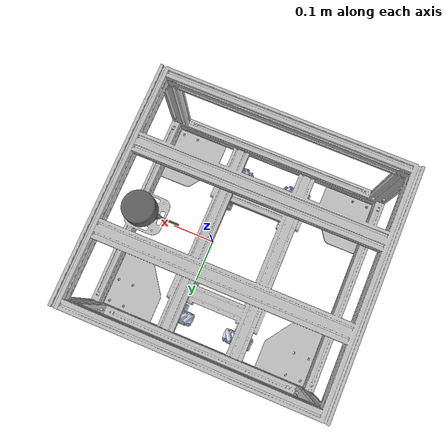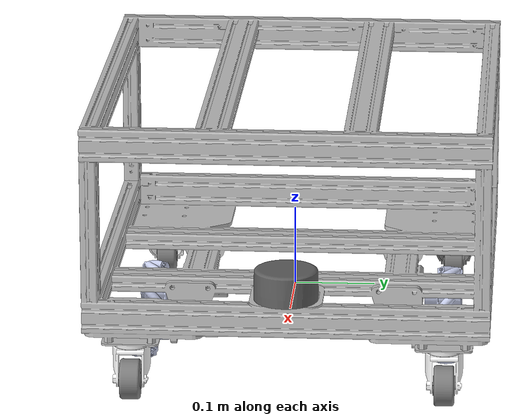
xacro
<?xml version="1.0" encoding="utf-8"?>
<robot name="chassis" xmlns:xacro="http://www.ros.org/wiki/xacro">

  <!-- ========== 参数配置 ========== -->
  <xacro:arg name="wheel_mu1" default="0.8"/>
  <xacro:arg name="wheel_mu2" default="0.6"/>
  <xacro:arg name="wheel_kp" default="100000.0"/>
  <xacro:arg name="wheel_kd" default="10.0"/>

  <xacro:arg name="caster_mu1" default="0.15"/>
  <xacro:arg name="caster_mu2" default="0.05"/>
  <xacro:arg name="caster_kp" default="8000.0"/>
  <xacro:arg name="caster_kd" default="1.0"/>

  <xacro:arg name="caster_damping" default="0.2"/>
  <xacro:arg name="caster_friction" default="0.05"/>

  <xacro:arg name="use_sim" default="true"/>

  <xacro:include filename="$(find chassis)/urdf/scan_sensor.xacro" />
  <xacro:include filename="$(find chassis)/urdf/mecanum.xacro" />

  <xacro:mecanum_drive
      use_sim="$(arg use_sim)"
      config_path="$(find chassis)/config/robot_config.yaml"
      wheel_mu1="$(arg wheel_mu1)"
      wheel_mu2="$(arg wheel_mu2)"
      wheel_kp="$(arg wheel_kp)"
      wheel_kd="$(arg wheel_kd)"
      caster_mu1="$(arg caster_mu1)"
      caster_mu2="$(arg caster_mu2)"
      caster_kp="$(arg caster_kp)"
      caster_kd="$(arg caster_kd)"
      caster_damping="$(arg caster_damping)"
      caster_friction="$(arg caster_friction)"
  />

  <xacro:scan_sensor prefix="scan" use_sim="$(arg use_sim)"/>

  <!-- ========== base ========== -->
  <link name="base_link">
    <inertial>
      <origin xyz="-0.0675270768601142 1.58783596061474E-05 0.0798674130827827" rpy="0 0 0" />
      <mass value="2.96722438134946" />
      <inertia
        ixx="0.018714594246172"
        ixy="-1.04874464350767E-06"
        ixz="-3.69448032218879E-08"
        iyy="0.0204034609796942"
        iyz="3.19038736280592E-11"
        izz="0.0374420224980581" />
    </inertial>
    <visual>
      <origin xyz="0 0 0" rpy="0 0 0" />
      <geometry>
        <mesh filename="package://chassis/meshes/base_link.STL" />
      </geometry>
      <material name="">
        <color rgba="0.752941176470588 0.752941176470588 0.752941176470588 1" />
      </material>
    </visual>
    <collision>
      <origin xyz="0 0 0" rpy="0 0 0" />
      <geometry>
        <mesh filename="package://chassis/meshes/base_link.STL" />
      </geometry>
    </collision>
  </link>

  <!-- ========== 麦轮 ========== -->
  <link name="FL_Link">
    <inertial>
      <origin xyz="-4.8532404021695E-06 -0.0177688188653586 3.72944025633232E-05" rpy="0 0 0" />
      <mass value="0.057099187693903" />
      <inertia
        ixx="2.10306170372987E-05"
        ixy="-1.11304021950106E-08"
        ixz="-8.1440403185043E-09"
        iyy="3.39619724351019E-05"
        iyz="8.9355546624424E-09"
        izz="2.10416881894403E-05" />
    </inertial>
    <visual>
      <origin xyz="0 0 0" rpy="0 0 0" />
      <geometry>
        <mesh filename="package://chassis/meshes/FL_Link.STL" />
      </geometry>
      <material name="">
        <color rgba="0.792156862745098 0.819607843137255 0.933333333333333 1" />
      </material>
    </visual>
    <collision>
      <origin xyz="0 0 0" rpy="0 0 0" />
      <geometry>
        <mesh filename="package://chassis/meshes/FL_Link.STL" />
      </geometry>
    </collision>
  </link>

  <joint name="FL_Joint" type="continuous">
    <origin xyz="0.0118643454815511 0.207006913787674 -0.0618699704261833" rpy="0 0 0" />
    <parent link="base_link" />
    <child link="FL_Link" />
    <axis xyz="0.000579809806714553 -0.99999983191028 0" />
  </joint>

  <link name="FR_Link">
    <inertial>
      <origin xyz="2.70131134820217E-05 0.017765652406799 -1.51714753059001E-05" rpy="0 0 0" />
      <mass value="0.0570982559608341" />
      <inertia
        ixx="2.10412452587063E-05"
        ixy="-1.6432899591046E-08"
        ixz="-8.14467783929371E-09"
        iyy="3.39612412912164E-05"
        iyz="3.63299828113721E-09"
        izz="2.10301739693171E-05" />
    </inertial>
    <visual>
      <origin xyz="0 0 0" rpy="0 0 0" />
      <geometry>
        <mesh filename="package://chassis/meshes/FR_Link.STL" />
      </geometry>
      <material name="">
        <color rgba="0.792156862745098 0.819607843137255 0.933333333333333 1" />
      </material>
    </visual>
    <collision>
      <origin xyz="0 0 0" rpy="0 0 0" />
      <geometry>
        <mesh filename="package://chassis/meshes/FR_Link.STL" />
      </geometry>
    </collision>
  </link>

  <joint name="FR_Joint" type="continuous">
    <origin xyz="0.0121038069317233 -0.205993016791277 -0.0618699699460414" rpy="0 0 0" />
    <parent link="base_link" />
    <child link="FR_Link" />
    <axis xyz="-0.000579809806714554 0.99999983191028 0" />
  </joint>

  <link name="BL_Link">
    <inertial>
      <origin xyz="4.76145018993152E-05 -0.0177656091305489 1.51715021141641E-05" rpy="0 0 0" />
      <mass value="0.0570982559458567" />
      <inertia
        ixx="2.10412245126417E-05"
        ixy="1.45057897625793E-09"
        ixz="8.14046530341467E-09"
        iyy="3.39612620190898E-05"
        iyz="3.6424171419057E-09"
        izz="2.10301739658219E-05" />
    </inertial>
    <visual>
      <origin xyz="0 0 0" rpy="0 0 0" />
      <geometry>
        <mesh filename="package://chassis/meshes/BL_Link.STL" />
      </geometry>
      <material name="">
        <color rgba="0.792156862745098 0.819607843137255 0.933333333333333 1" />
      </material>
    </visual>
    <collision>
      <origin xyz="0 0 0" rpy="0 0 0" />
      <geometry>
        <mesh filename="package://chassis/meshes/BL_Link.STL" />
      </geometry>
    </collision>
  </link>

  <joint name="BL_Joint" type="continuous">
    <origin xyz="-0.143135048654426 0.205917043435722 -0.0618702812116643" rpy="0 0 0" />
    <parent link="base_link" />
    <child link="BL_Link" />
    <axis xyz="0.000579809806715559 -0.99999983191028 0" />
  </joint>

  <link name="BR_Link">
    <inertial>
      <origin xyz="4.85324040201685E-06 0.0177688188654452 3.7294361248115E-05" rpy="0 0 0" />
      <mass value="0.0570991876939034" />
      <inertia
        ixx="2.10306170372988E-05"
        ixy="-1.11304021758348E-08"
        ixz="8.14404034436538E-09"
        iyy="3.39619724350603E-05"
        iyz="-8.93558470427248E-09"
        izz="2.10416881894818E-05" />
    </inertial>
    <visual>
      <origin xyz="0 0 0" rpy="0 0 0" />
      <geometry>
        <mesh filename="package://chassis/meshes/BR_Link.STL" />
      </geometry>
      <material name="">
        <color rgba="0.792156862745098 0.819607843137255 0.933333333333333 1" />
      </material>
    </visual>
    <collision>
      <origin xyz="0 0 0" rpy="0 0 0" />
      <geometry>
        <mesh filename="package://chassis/meshes/BR_Link.STL" />
      </geometry>
    </collision>
  </link>

  <joint name="BR_Joint" type="continuous">
    <origin xyz="-0.142895587204251 -0.207082887143228 -0.0618702807315214" rpy="0 0 0" />
    <parent link="base_link" />
    <child link="BR_Link" />
    <axis xyz="-0.000579809806717571 0.99999983191028 0" />
  </joint>

  <!-- ========== 从动轮：支架固定，小滚轮连续 ========== -->

  <link name="caster_FL_Link">
    <inertial>
      <origin xyz="0.0117884879284703 0.000222614197135318 -0.0122637089489482" rpy="0 0 0" />
      <mass value="0.0145709016852163" />
      <inertia
        ixx="5.41948990782556E-06"
        ixy="1.14634945215277E-08"
        ixz="1.28769588367008E-06"
        iyy="5.04807353874172E-06"
        iyz="3.96860195506273E-08"
        izz="6.51291797995408E-06" />
    </inertial>
    <visual>
      <origin xyz="0 0 0" rpy="0 0 0" />
      <geometry>
        <mesh filename="package://chassis/meshes/caster_FL_Link.STL" />
      </geometry>
      <material name="">
        <color rgba="1 1 1 1" />
      </material>
    </visual>
  </link>

  <joint name="caster_FL_Joint" type="fixed">
    <origin xyz="0.15188785333492 0.193588098565258 -0.0359496954534681" rpy="0 0 0" />
    <parent link="base_link" />
    <child link="caster_FL_Link" />
    <axis xyz="0 0 -0.99999999999799" />
  </joint>

  <link name="caster-FL-wheel-Link">
    <inertial>
      <origin xyz="0.000292643953135885 -0.00949549153633783 5.86773171717958E-10" rpy="0 0 0" />
      <mass value="0.0496058590410657" />
      <inertia
        ixx="1.02033252308362E-05"
        ixy="-1.49916123996596E-07"
        ixz="9.26405810966813E-15"
        iyy="1.50630708965755E-05"
        iyz="-3.00593187238998E-13"
        izz="1.01987049279275E-05" />
    </inertial>
    <visual>
      <origin xyz="0 0 0" rpy="0 0 0" />
      <geometry>
        <mesh filename="package://chassis/meshes/caster-FL-wheel-Link.STL" />
      </geometry>
      <material name="">
        <color rgba="0.498039215686275 0.498039215686275 0.498039215686275 1" />
      </material>
    </visual>
    <collision>
      <origin xyz="0 0 0" rpy="1.5708 0 0" />
      <geometry>
        <cylinder radius="0.012" length="0.01" />
      </geometry>
    </collision>
  </link>

  <joint name="caster-FL-wheel-Joint" type="continuous">
    <origin xyz="0.0266946086859995 0.0103272164557828 -0.0329999464753622" rpy="0 0 0" />
    <parent link="caster_FL_Link" />
    <child link="caster-FL-wheel-Link" />
    <axis xyz="0.0308046266460062 -0.999525424877825 0" />
    <dynamics damping="0.05" friction="0.0" />
  </joint>

  <link name="caster_LR_Link">
    <inertial>
      <origin xyz="0.0117884879284716 0.000222614197133666 -0.0122637089489481" rpy="0 0 0" />
      <mass value="0.0145709016852163" />
      <inertia
        ixx="5.41948990782553E-06"
        ixy="1.14634945215314E-08"
        ixz="1.28769588367007E-06"
        iyy="5.04807353874169E-06"
        iyz="3.96860195505983E-08"
        izz="6.51291797995403E-06" />
    </inertial>
    <visual>
      <origin xyz="0 0 0" rpy="0 0 0" />
      <geometry>
        <mesh filename="package://chassis/meshes/caster_LR_Link.STL" />
      </geometry>
      <material name="">
        <color rgba="1 1 1 1" />
      </material>
    </visual>
  </link>

  <joint name="caster_FR_Joint" type="fixed">
    <origin xyz="0.152112239730119 -0.193411836384017 -0.0359496950035531" rpy="0 0 0" />
    <parent link="base_link" />
    <child link="caster_LR_Link" />
    <axis xyz="0 0 -0.99999999999799" />
  </joint>

  <link name="caster-FR-wheel-Link">
    <inertial>
      <origin xyz="-0.000292643953136995 0.00949549153633933 -5.86773303556942E-10" rpy="0 0 0" />
      <mass value="0.0496058590410657" />
      <inertia
        ixx="1.02033252308362E-05"
        ixy="-1.49916123996583E-07"
        ixz="9.26405765617566E-15"
        iyy="1.50630708965755E-05"
        iyz="-3.00593190220109E-13"
        izz="1.01987049279275E-05" />
    </inertial>
    <visual>
      <origin xyz="0 0 0" rpy="0 0 0" />
      <geometry>
        <mesh filename="package://chassis/meshes/caster-FR-wheel-Link.STL" />
      </geometry>
      <material name="">
        <color rgba="0.498039215686275 0.498039215686275 0.498039215686275 1" />
      </material>
    </visual>
    <collision>
      <origin xyz="0 0 0" rpy="1.5708 0 0" />
      <geometry>
        <cylinder radius="0.012" length="0.01" />
      </geometry>
    </collision>
  </link>

  <joint name="caster-FR-wheel-Joint" type="continuous">
    <origin xyz="0.0272798965922736 -0.00866376661689594 -0.0329999453018156" rpy="0 0 0" />
    <parent link="caster_LR_Link" />
    <child link="caster-FR-wheel-Link" />
    <axis xyz="0.0308046266460034 -0.999525424877825 0" />
    <dynamics damping="0.05" friction="0.0" />
  </joint>

  <link name="caster_BL_Link">
    <inertial>
      <origin xyz="-0.0117884387491139 -0.000222614197137871 -0.0122637562224485" rpy="0 0 0" />
      <mass value="0.0145709016851673" />
      <inertia
        ixx="5.41950023553841E-06"
        ixy="1.14636536608252E-08"
        ixz="-1.28770026843925E-06"
        iyy="5.04807353871192E-06"
        iyz="-3.96859735908227E-08"
        izz="6.51290765219745E-06" />
    </inertial>
    <visual>
      <origin xyz="0 0 0" rpy="0 0 0" />
      <geometry>
        <mesh filename="package://chassis/meshes/caster_BL_Link.STL" />
      </geometry>
      <material name="">
        <color rgba="0.498039215686275 0.498039215686275 0.498039215686275 1" />
      </material>
    </visual>
  </link>

  <joint name="caster_BL_Joint" type="fixed">
    <origin xyz="-0.292112072032346 0.193330663011075 -0.0359505857068151" rpy="0 0 0" />
    <parent link="base_link" />
    <child link="caster_BL_Link" />
    <axis xyz="0 0 -0.99999999999799" />
  </joint>

  <link name="caster-BL-wheel-Link">
    <inertial>
      <origin xyz="0.00029264395313703 -0.00949549153633933 5.86773268862473E-10" rpy="0 0 0" />
      <mass value="0.0496058590410656" />
      <inertia
        ixx="1.02033252308362E-05"
        ixy="-1.49916123996578E-07"
        ixz="9.26405785422392E-15"
        iyy="1.50630708965755E-05"
        iyz="-3.00593170227219E-13"
        izz="1.01987049279275E-05" />
    </inertial>
    <visual>
      <origin xyz="0 0 0" rpy="0 0 0" />
      <geometry>
        <mesh filename="package://chassis/meshes/caster-BL-wheel-Link.STL" />
      </geometry>
      <material name="">
        <color rgba="0.498039215686275 0.498039215686275 0.498039215686275 1" />
      </material>
    </visual>
    <collision>
      <origin xyz="0 0 0" rpy="1.5708 0 0" />
      <geometry>
        <cylinder radius="0.012" length="0.01" />
      </geometry>
    </collision>
  </link>

  <joint name="caster-BL-wheel-Joint" type="continuous">
    <origin xyz="-0.0272797642572944 0.00866376661689533 -0.0330000546980519" rpy="0 0 0" />
    <parent link="caster_BL_Link" />
    <child link="caster-BL-wheel-Link" />
    <axis xyz="-0.030804626646003 0.999525424877825 0" />
    <dynamics damping="0.05" friction="0.0" />
  </joint>

  <link name="caster_BR_Link">
    <inertial>
      <origin xyz="-0.011788438749114 -0.000222614197137969 -0.0122637562224485" rpy="0 0 0" />
      <mass value="0.0145709016851673" />
      <inertia
        ixx="5.41950023553843E-06"
        ixy="1.14636536608231E-08"
        ixz="-1.28770026843926E-06"
        iyy="5.04807353871191E-06"
        iyz="-3.96859735908276E-08"
        izz="6.51290765219743E-06" />
    </inertial>
    <visual>
      <origin xyz="0 0 0" rpy="0 0 0" />
      <geometry>
        <mesh filename="package://chassis/meshes/caster_BR_Link.STL" />
      </geometry>
      <material name="">
        <color rgba="1 1 1 1" />
      </material>
    </visual>
  </link>

  <joint name="caster_BR_Joint" type="fixed">
    <origin xyz="-0.291887685637147 -0.1936692719382 -0.0359505852569" rpy="0 0 0" />
    <parent link="base_link" />
    <child link="caster_BR_Link" />
    <axis xyz="0 0 -0.99999999999799" />
  </joint>

  <link name="caster-BR-wheel-Link">
    <inertial>
      <origin xyz="-0.000292643953137051 0.00949549153633933 -5.86773282740261E-10" rpy="0 0 0" />
      <mass value="0.0496058590410657" />
      <inertia
        ixx="1.02033252308362E-05"
        ixy="-1.49916123996595E-07"
        ixz="9.26405682100073E-15"
        iyy="1.50630708965755E-05"
        iyz="-3.00593174636105E-13"
        izz="1.01987049279275E-05" />
    </inertial>
    <visual>
      <origin xyz="0 0 0" rpy="0 0 0" />
      <geometry>
        <mesh filename="package://chassis/meshes/caster-BR-wheel-Link.STL" />
      </geometry>
      <material name="">
        <color rgba="0.498039215686275 0.498039215686275 0.498039215686275 1" />
      </material>
    </visual>
    <collision>
      <origin xyz="0 0 0" rpy="1.5708 0 0" />
      <geometry>
        <cylinder radius="0.012" length="0.01" />
      </geometry>
    </collision>
  </link>

  <joint name="caster-BR-wheel-Joint" type="continuous">
    <origin xyz="-0.0266944763510203 -0.0103272164557834 -0.0330000535245053" rpy="0 0 0" />
    <parent link="caster_BR_Link" />
    <child link="caster-BR-wheel-Link" />
    <axis xyz="-0.0308046266460051 0.999525424877825 0" />
    <dynamics damping="0.05" friction="0.0" />
  </joint>

</robot>

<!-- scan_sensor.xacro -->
<robot xmlns:xacro="http://www.ros.org/wiki/xacro">

  <xacro:macro name="scan_sensor" params="prefix use_sim:=true">

    <!-- 连杆定义（保持不变） -->
    <link name="${prefix}_Link">
      <inertial>
        <origin xyz="-0.00250631530381207 4.56584853758546E-06 0.00608264669062357" rpy="0 0 0"/>
        <mass value="0.0374307357500632"/>
        <inertia ixx="2.80476493090254E-05" ixy="-2.19899695277469E-09" ixz="-1.07121854785562E-06"
                 iyy="3.36164872297249E-05" iyz="-6.8396885171025E-10" izz="4.50845442757731E-05"/>
      </inertial>
      <visual>
        <origin xyz="0 0 0" rpy="0 0 0"/>
        <geometry>
          <mesh filename="package://chassis/meshes/scan_Link.STL"/>
        </geometry>
        <material name="">
          <color rgba="0.376470588235294 0.376470588235294 0.376470588235294 1"/>
        </material>
      </visual>
      <collision>
        <origin xyz="0 0 0" rpy="0 0 0"/>
        <geometry>
          <mesh filename="package://chassis/meshes/scan_Link.STL"/>
        </geometry>
      </collision>
    </link>

    <joint name="${prefix}_Joint" type="fixed">
      <origin xyz="0.177 0 0.050075" rpy="0 0 0"/>
      <parent link="base_link"/>
      <child link="${prefix}_Link"/>
      <axis xyz="0 0 0"/>
    </joint>

    <!-- 仿真专用：Gazebo 雷达插件 -->
    <xacro:if value="${use_sim}">
      <gazebo reference="${prefix}_Link">
        <sensor name="laserscan" type="ray">   <!-- 若仍无扫描线，可保留 gpu_ray，但 ray 更通用 -->
          <always_on>true</always_on>
          <visualize>true</visualize>
          <update_rate>10</update_rate>
          <pose>0 0 0 0 0 0</pose>
          <ray>
            <scan>
              <horizontal>
                <samples>360</samples>
                <resolution>1.0</resolution>
                <min_angle>0.0</min_angle>
                <max_angle>6.28318</max_angle>
              </horizontal>
            </scan>
            <range>
              <min>0.12</min>
              <max>8.0</max>
              <resolution>0.015</resolution>
            </range>
            <noise>
              <type>gaussian</type>
              <mean>0.0</mean>
              <stddev>0.01</stddev>
            </noise>
          </ray>
          <plugin name="laserscan" filename="libgazebo_ros_ray_sensor.so">
            <topic>scan</topic>
            <frame_name>${prefix}_Link</frame_name>
            <output_type>sensor_msgs/LaserScan</output_type>
          </plugin>
        </sensor>
      </gazebo>
    </xacro:if>

  </xacro:macro>

</robot>
